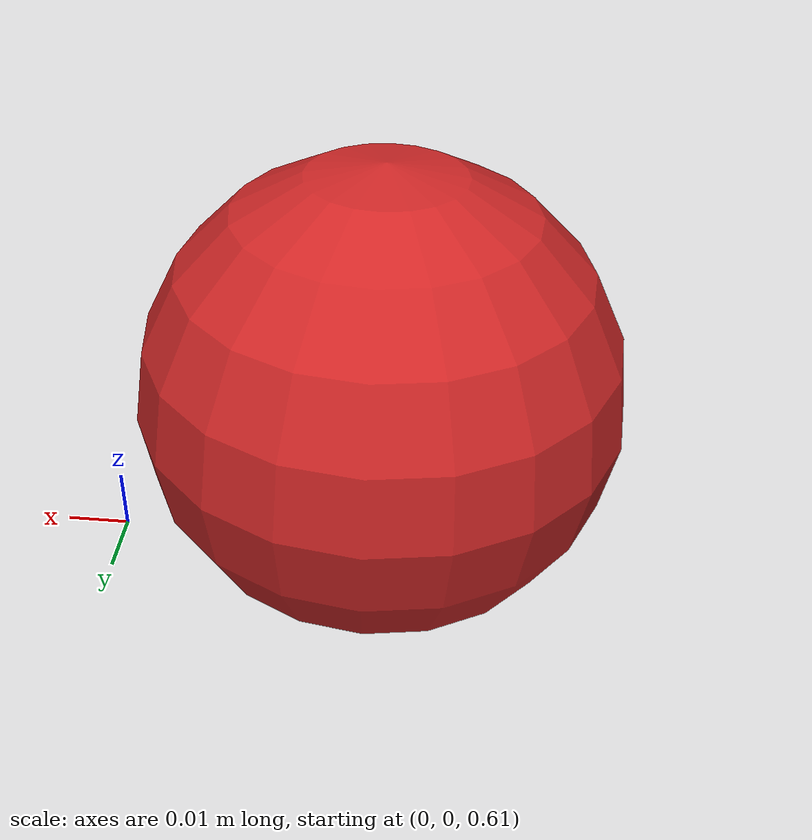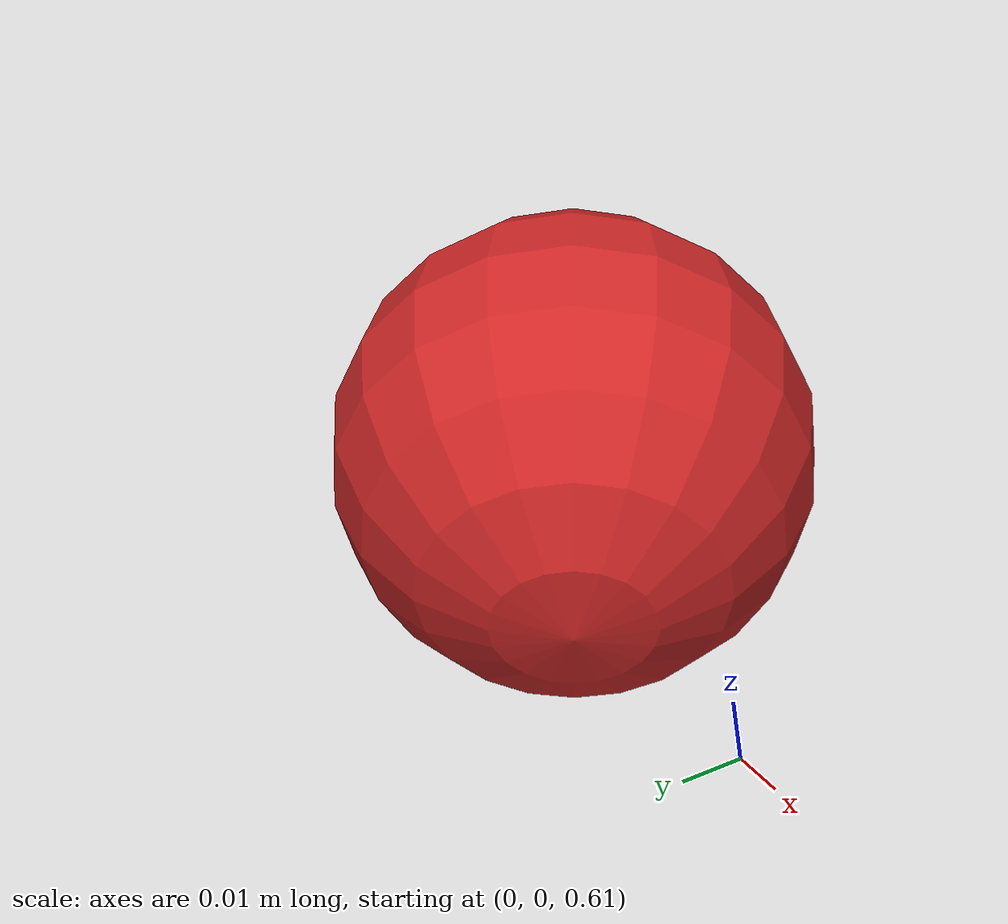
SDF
<?xml version='1.0'?>
<sdf version='1.6'>
  <model name='traffic_light_green'>
    <pose frame=''>0.00 0 0 0 0 0</pose>
    <link name='traffic_light_green'>
       <collision name='collision'>
          <pose frame=''>-0.041 0 0.64 0 0 0</pose>
          <geometry>
            <sphere>
              <radius>0.035</radius>
            </sphere>
          </geometry>
        </collision>
        <visual name='visual'>
          <pose frame=''>-0.041 0 0.64  0 0 0</pose>
          <geometry>
            <sphere>
              <radius>0.035</radius>
            </sphere>
          </geometry>
          <material>
            <script>
              <name>Gazebo/Red</name>
              <uri>file://media/materials/scripts/gazebo.material</uri>
            </script>
          </material>
        </visual>
        <self_collide>0</self_collide>
        <kinematic>0</kinematic>
      </link>
      <static>1</static>
    </model>
</sdf>
